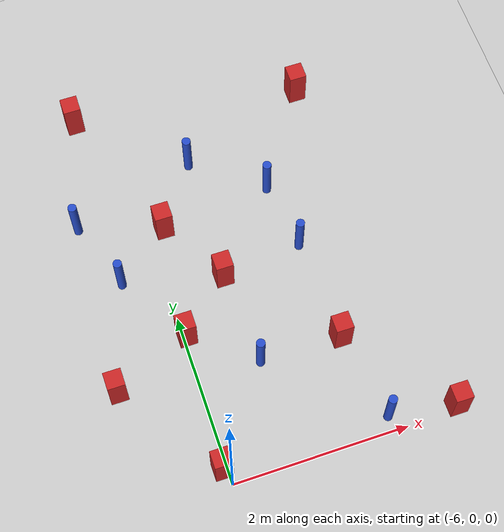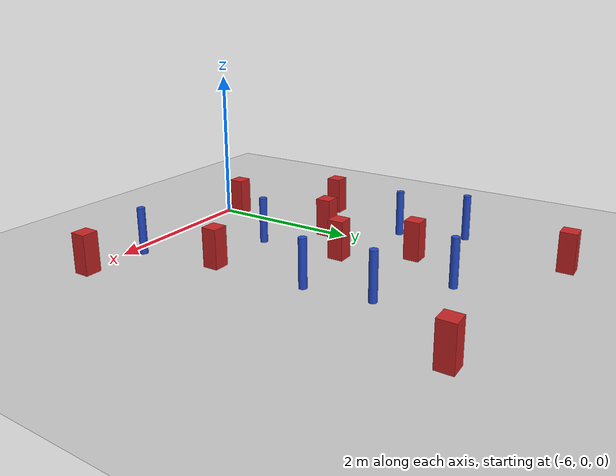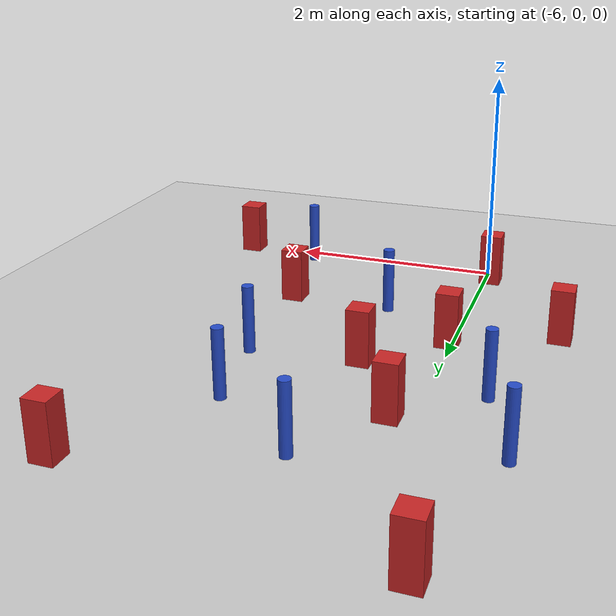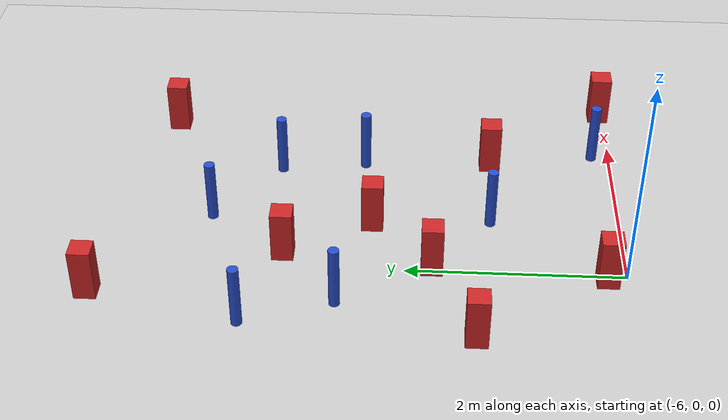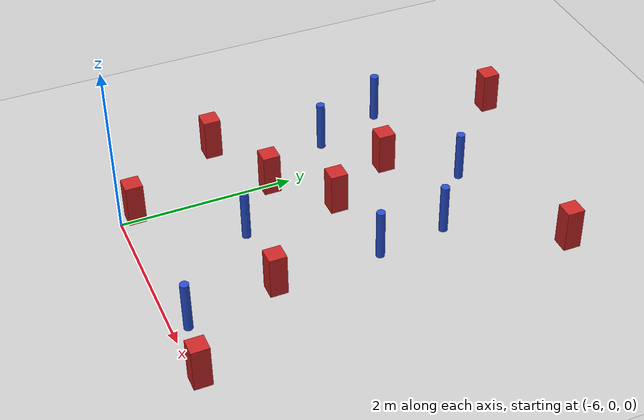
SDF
<sdf version="1.6">
 <world name="default">
  <model name="ground_plane">
   <static>1</static>
   <link name="link">
    <collision name="collision">
     <geometry><plane><normal>0 0 1</normal><size>100 100</size></plane></geometry>
     <surface><friction><ode><mu>100</mu><mu2>50</mu2></ode></friction></surface>
    </collision>
    <visual name="visual">
     <cast_shadows>0</cast_shadows>
     <geometry><plane><normal>0 0 1</normal><size>100 100</size></plane></geometry>
     <material>
      <script><uri>file://media/materials/scripts/gazebo.material</uri><name>Gazebo/Grey</name></script>
     </material>
    </visual>
   </link>
  </model>
  <model name="square_post_obstacle0">
   <static>0</static>
   <link name="link">
    <pose>0 0 0.25 0 -0 0</pose>
    <inertial>
     <mass>100</mass>
     <inertia>
      <ixx>0.166667</ixx>
      <ixy>0</ixy>
      <ixz>0</ixz>
      <iyy>0.166667</iyy>
      <iyz>0</iyz>
      <izz>0.166667</izz>
     </inertia>
    </inertial>
    <collision name="collision"><geometry><box><size>0.2 0.2 0.5</size></box></geometry></collision>
    <visual name="visual">
     <geometry><box><size>0.2 0.2 0.5</size></box></geometry>
     <material>
      <script><name>Gazebo/Red</name><uri>file://media/materials/scripts/gazebo.material</uri></script>
     </material>
    </visual>
   </link>
   <pose>-6.057 0.183913 0 -4e-06 1e-06 -0.000299</pose>
  </model>
  <model name="square_post_obstacle2">
   <static>0</static>
   <link name="link">
    <pose>0 0 0.25 0 -0 0</pose>
    <inertial>
     <mass>100</mass>
     <inertia>
      <ixx>0.166667</ixx>
      <ixy>0</ixy>
      <ixz>0</ixz>
      <iyy>0.166667</iyy>
      <iyz>0</iyz>
      <izz>0.166667</izz>
     </inertia>
    </inertial>
    <collision name="collision"><geometry><box><size>0.2 0.2 0.5</size></box></geometry></collision>
    <visual name="visual">
     <geometry><box><size>0.2 0.2 0.5</size></box></geometry>
     <material>
      <script><name>Gazebo/Red</name><uri>file://media/materials/scripts/gazebo.material</uri></script>
     </material>
    </visual>
   </link>
   <pose>-3.76358 4.37344 0 -4e-06 1e-06 -0.000299</pose>
  </model>
  <model name="square_post_obstacle3">
   <static>0</static>
   <link name="link">
    <pose>0 0 0.25 0 -0 0</pose>
    <inertial>
     <mass>100</mass>
     <inertia>
      <ixx>0.166667</ixx>
      <ixy>0</ixy>
      <ixz>0</ixz>
      <iyy>0.166667</iyy>
      <iyz>0</iyz>
      <izz>0.166667</izz>
     </inertia>
    </inertial>
    <collision name="collision"><geometry><box><size>0.2 0.2 0.5</size></box></geometry></collision>
    <visual name="visual">
     <geometry><box><size>0.2 0.2 0.5</size></box></geometry>
     <material>
      <script><name>Gazebo/Red</name><uri>file://media/materials/scripts/gazebo.material</uri></script>
     </material>
    </visual>
   </link>
   <pose>-4.34566 1.1971 0 -4e-06 1e-06 -0.000299</pose>
  </model>
  <model name="square_post_obstacle14">
   <static>0</static>
   <link name="link">
    <pose>0 0 0.25 0 -0 0</pose>
    <inertial>
     <mass>100</mass>
     <inertia>
      <ixx>0.166667</ixx>
      <ixy>0</ixy>
      <ixz>0</ixz>
      <iyy>0.166667</iyy>
      <iyz>0</iyz>
      <izz>0.166667</izz>
     </inertia>
    </inertial>
    <collision name="collision"><geometry><box><size>0.2 0.2 0.5</size></box></geometry></collision>
    <visual name="visual">
     <geometry><box><size>0.2 0.2 0.5</size></box></geometry>
     <material>
      <script><name>Gazebo/Red</name><uri>file://media/materials/scripts/gazebo.material</uri></script>
     </material>
    </visual>
   </link>
   <pose>-5.35035 2.31245 0 -4e-06 1e-06 -0.000299</pose>
  </model>
  <model name="pole_obstacle21">
   <static>0</static>
   <link name="link">
    <pose>0 0 0.3 0 -0 0</pose>
    <inertial>
     <mass>1</mass>
     <inertia><ixx>0.145833</ixx><ixy>0</ixy><ixz>0</ixz><iyy>0.145833</iyy><iyz>0</iyz><izz>0.125</izz></inertia>
    </inertial>
    <collision name="collision">
     <geometry><cylinder><radius>0.05</radius><length>0.6</length></cylinder></geometry>
    </collision>
    <visual name="visual">
     <geometry><cylinder><radius>0.05</radius><length>0.6</length></cylinder></geometry>
     <material>
      <script><name>Gazebo/Blue</name><uri>file://media/materials/scripts/gazebo.material</uri></script>
     </material>
    </visual>
   </link>
   <pose>-6.75724 3.41665 -5e-06 0 0 -2e-06</pose>
  </model>
  <model name="square_post_obstacle35">
   <static>0</static>
   <link name="link">
    <pose>0 0 0.25 0 -0 0</pose>
    <inertial>
     <mass>100</mass>
     <inertia>
      <ixx>0.166667</ixx>
      <ixy>0</ixy>
      <ixz>0</ixz>
      <iyy>0.166667</iyy>
      <iyz>0</iyz>
      <izz>0.166667</izz>
     </inertia>
    </inertial>
    <collision name="collision"><geometry><box><size>0.2 0.2 0.5</size></box></geometry></collision>
    <visual name="visual">
     <geometry><box><size>0.2 0.2 0.5</size></box></geometry>
     <material>
      <script><name>Gazebo/Red</name><uri>file://media/materials/scripts/gazebo.material</uri></script>
     </material>
    </visual>
   </link>
   <pose>-3.42467 0.050333 0 -4e-06 1e-06 -0.000299</pose>
  </model>
  <model name="pole_obstacle32">
   <static>0</static>
   <link name="link">
    <pose>0 0 0.3 0 -0 0</pose>
    <inertial>
     <mass>1</mass>
     <inertia><ixx>0.145833</ixx><ixy>0</ixy><ixz>0</ixz><iyy>0.145833</iyy><iyz>0</iyz><izz>0.125</izz></inertia>
    </inertial>
    <collision name="collision">
     <geometry><cylinder><radius>0.05</radius><length>0.6</length></cylinder></geometry>
    </collision>
    <visual name="visual">
     <geometry><cylinder><radius>0.05</radius><length>0.6</length></cylinder></geometry>
     <material>
      <script><name>Gazebo/Blue</name><uri>file://media/materials/scripts/gazebo.material</uri></script>
     </material>
    </visual>
   </link>
   <pose>-4.51287 3.23499 -5e-06 0 0 -0.000148</pose>
  </model>
  <model name="pole_obstacle33">
   <static>0</static>
   <link name="link">
    <pose>0 0 0.3 0 -0 0</pose>
    <inertial>
     <mass>1</mass>
     <inertia><ixx>0.145833</ixx><ixy>0</ixy><ixz>0</ixz><iyy>0.145833</iyy><iyz>0</iyz><izz>0.125</izz></inertia>
    </inertial>
    <collision name="collision">
     <geometry><cylinder><radius>0.05</radius><length>0.6</length></cylinder></geometry>
    </collision>
    <visual name="visual">
     <geometry><cylinder><radius>0.05</radius><length>0.6</length></cylinder></geometry>
     <material>
      <script><name>Gazebo/Blue</name><uri>file://media/materials/scripts/gazebo.material</uri></script>
     </material>
    </visual>
   </link>
   <pose>-4.39979 2.42005 -5e-06 0 0 -0.000148</pose>
  </model>
  <model name="square_post_obstacle43">
   <static>0</static>
   <link name="link">
    <pose>0 0 0.25 0 -0 0</pose>
    <inertial>
     <mass>100</mass>
     <inertia>
      <ixx>0.166667</ixx>
      <ixy>0</ixy>
      <ixz>0</ixz>
      <iyy>0.166667</iyy>
      <iyz>0</iyz>
      <izz>0.166667</izz>
     </inertia>
    </inertial>
    <collision name="collision"><geometry><box><size>0.2 0.2 0.5</size></box></geometry></collision>
    <visual name="visual">
     <geometry><box><size>0.2 0.2 0.5</size></box></geometry>
     <material>
      <script><name>Gazebo/Red</name><uri>file://media/materials/scripts/gazebo.material</uri></script>
     </material>
    </visual>
   </link>
   <pose>-6.87258 1.36134 0 -4e-06 1e-06 -0.000299</pose>
  </model>
  <model name="square_post_obstacle44">
   <static>0</static>
   <link name="link">
    <pose>0 0 0.25 0 -0 0</pose>
    <inertial>
     <mass>100</mass>
     <inertia>
      <ixx>0.166667</ixx>
      <ixy>0</ixy>
      <ixz>0</ixz>
      <iyy>0.166667</iyy>
      <iyz>0</iyz>
      <izz>0.166667</izz>
     </inertia>
    </inertial>
    <collision name="collision"><geometry><box><size>0.2 0.2 0.5</size></box></geometry></collision>
    <visual name="visual">
     <geometry><box><size>0.2 0.2 0.5</size></box></geometry>
     <material>
      <script><name>Gazebo/Red</name><uri>file://media/materials/scripts/gazebo.material</uri></script>
     </material>
    </visual>
   </link>
   <pose>-5.81455 3.10909 0 -4e-06 1e-06 -0.000299</pose>
  </model>
  <model name="square_post_obstacle50">
   <static>0</static>
   <link name="link">
    <pose>0 0 0.25 0 -0 0</pose>
    <inertial>
     <mass>100</mass>
     <inertia>
      <ixx>0.166667</ixx>
      <ixy>0</ixy>
      <ixz>0</ixz>
      <iyy>0.166667</iyy>
      <iyz>0</iyz>
      <izz>0.166667</izz>
     </inertia>
    </inertial>
    <collision name="collision"><geometry><box><size>0.2 0.2 0.5</size></box></geometry></collision>
    <visual name="visual">
     <geometry><box><size>0.2 0.2 0.5</size></box></geometry>
     <material>
      <script><name>Gazebo/Red</name><uri>file://media/materials/scripts/gazebo.material</uri></script>
     </material>
    </visual>
   </link>
   <pose>-6.42275 4.78788 0 -4e-06 1e-06 -0.000299</pose>
  </model>
  <model name="pole_obstacle60">
   <static>0</static>
   <link name="link">
    <pose>0 0 0.3 0 -0 0</pose>
    <inertial>
     <mass>1</mass>
     <inertia><ixx>0.145833</ixx><ixy>0</ixy><ixz>0</ixz><iyy>0.145833</iyy><iyz>0</iyz><izz>0.125</izz></inertia>
    </inertial>
    <collision name="collision">
     <geometry><cylinder><radius>0.05</radius><length>0.6</length></cylinder></geometry>
    </collision>
    <visual name="visual">
     <geometry><cylinder><radius>0.05</radius><length>0.6</length></cylinder></geometry>
     <material>
      <script><name>Gazebo/Blue</name><uri>file://media/materials/scripts/gazebo.material</uri></script>
     </material>
    </visual>
   </link>
   <pose>-5.29189 3.82545 -5e-06 0 0 -1.3e-05</pose>
  </model>
  <model name="square_post_obstacle81">
   <static>0</static>
   <link name="link">
    <pose>0 0 0.25 0 -0 0</pose>
    <inertial>
     <mass>100</mass>
     <inertia>
      <ixx>0.166667</ixx>
      <ixy>0</ixy>
      <ixz>0</ixz>
      <iyy>0.166667</iyy>
      <iyz>0</iyz>
      <izz>0.166667</izz>
     </inertia>
    </inertial>
    <collision name="collision"><geometry><box><size>0.2 0.2 0.5</size></box></geometry></collision>
    <visual name="visual">
     <geometry><box><size>0.2 0.2 0.5</size></box></geometry>
     <material>
      <script><name>Gazebo/Red</name><uri>file://media/materials/scripts/gazebo.material</uri></script>
     </material>
    </visual>
   </link>
   <pose>-5.9619 1.75044 0 -4e-06 1e-06 -0.000299</pose>
  </model>
  <model name="pole_obstacle85">
   <static>0</static>
   <link name="link">
    <pose>0 0 0.3 0 -0 0</pose>
    <inertial>
     <mass>1</mass>
     <inertia><ixx>0.145833</ixx><ixy>0</ixy><ixz>0</ixz><iyy>0.145833</iyy><iyz>0</iyz><izz>0.125</izz></inertia>
    </inertial>
    <collision name="collision">
     <geometry><cylinder><radius>0.05</radius><length>0.6</length></cylinder></geometry>
    </collision>
    <visual name="visual">
     <geometry><cylinder><radius>0.05</radius><length>0.6</length></cylinder></geometry>
     <material>
      <script><name>Gazebo/Blue</name><uri>file://media/materials/scripts/gazebo.material</uri></script>
     </material>
    </visual>
   </link>
   <pose>-5.27756 1.21057 -5e-06 0 0 -5.7e-05</pose>
  </model>
  <model name="pole_obstacle93">
   <static>0</static>
   <link name="link">
    <pose>0 0 0.3 0 -0 0</pose>
    <inertial>
     <mass>1</mass>
     <inertia><ixx>0.145833</ixx><ixy>0</ixy><ixz>0</ixz><iyy>0.145833</iyy><iyz>0</iyz><izz>0.125</izz></inertia>
    </inertial>
    <collision name="collision">
     <geometry><cylinder><radius>0.05</radius><length>0.6</length></cylinder></geometry>
    </collision>
    <visual name="visual">
     <geometry><cylinder><radius>0.05</radius><length>0.6</length></cylinder></geometry>
     <material>
      <script><name>Gazebo/Blue</name><uri>file://media/materials/scripts/gazebo.material</uri></script>
     </material>
    </visual>
   </link>
   <pose>-6.46764 2.59576 -5e-06 0 0 -2e-06</pose>
  </model>
  <model name="pole_obstacle100">
   <static>0</static>
   <link name="link">
    <pose>0 0 0.3 0 -0 0</pose>
    <inertial>
     <mass>1</mass>
     <inertia><ixx>0.145833</ixx><ixy>0</ixy><ixz>0</ixz><iyy>0.145833</iyy><iyz>0</iyz><izz>0.125</izz></inertia>
    </inertial>
    <collision name="collision">
     <geometry><cylinder><radius>0.05</radius><length>0.6</length></cylinder></geometry>
    </collision>
    <visual name="visual">
     <geometry><cylinder><radius>0.05</radius><length>0.6</length></cylinder></geometry>
     <material>
      <script><name>Gazebo/Blue</name><uri>file://media/materials/scripts/gazebo.material</uri></script>
     </material>
    </visual>
   </link>
   <pose>-4.16867 0.173772 -5e-06 0 -0 4e-06</pose>
  </model>
 </world>
</sdf>
